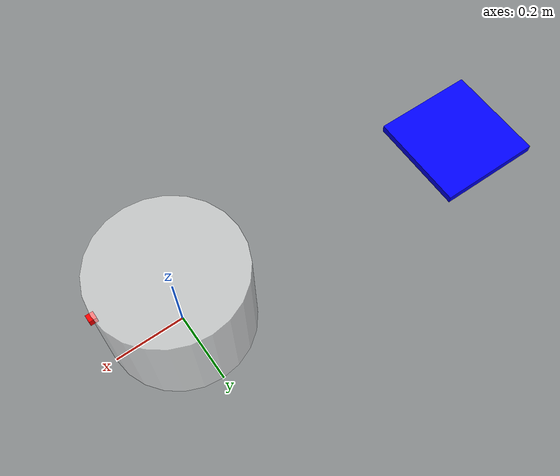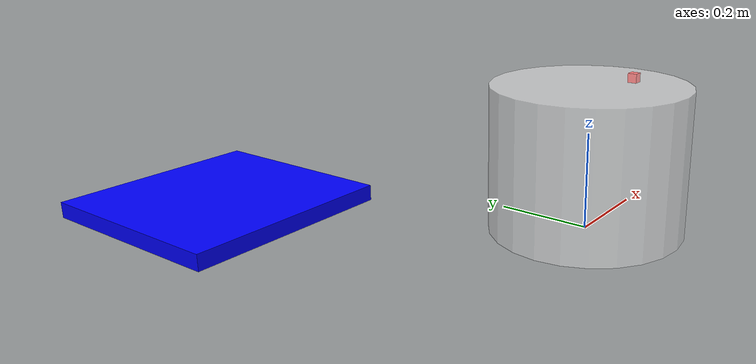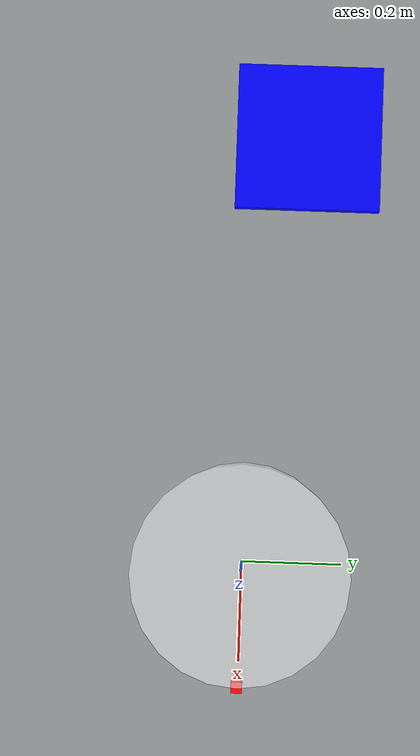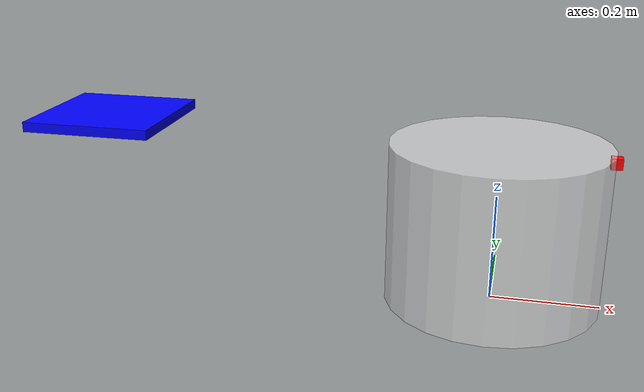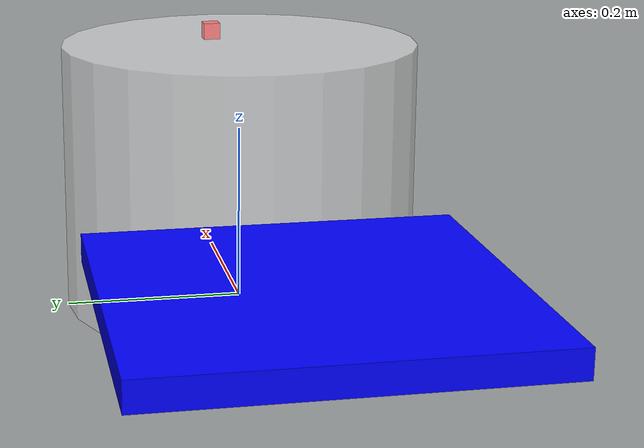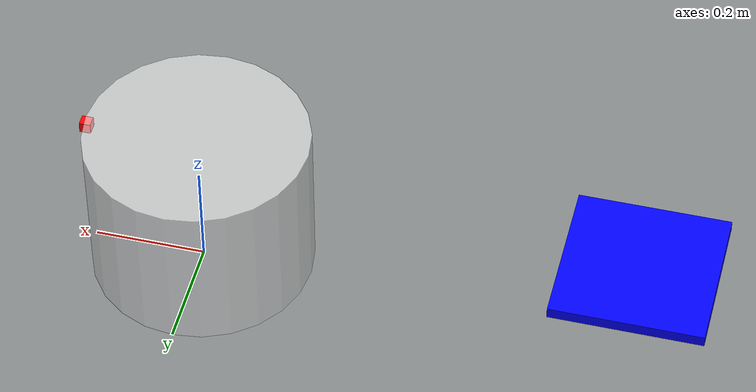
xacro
<?xml version="1.0"?>
<robot name="seek_robot" xmlns:xacro="http://www.ros.org/wiki/xacro">
  <xacro:include filename="$(find rm_seek)/urdf/base.urdf.xacro" />
  <xacro:include filename="$(find rm_seek)/urdf/camera.urdf.xacro"/>
  <xacro:include filename="$(find rm_seek)/urdf/seek_object.urdf.xacro"/>

  <xacro:base_link length="0.3" radius="0.2"/>
  <xacro:camera_link parent="base_link" xyz="0.2 0.0 0.13" rpy="1.5708 0.0 3.1416"/>
  <xacro:seek_object_link link_name="object" parent="camera_link" xyz="1.0 0.0 0.1" rpy="1.5708 0.0 3.1416"/>
</robot>

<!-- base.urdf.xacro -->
<robot xmlns:xacro="http://www.ros.org/wiki/xacro">
<!-- Base -->
  <xacro:macro name="base_link" params="length radius">
    <link name="base_footprint">
    </link>
    <link name="base_link">
      <visual>
        <origin xyz="0 0 0" rpy="0 0 0"/>
        <geometry>
          <cylinder length="${length}" radius="${radius}"/>
        </geometry>
        <material name="white">
          <color rgba="1.0 1.0 1.0 0.5"/>
        </material>
      </visual>
      <collision>
        <origin xyz="0 0 0" rpy="0 0 0"/>
        <geometry>
          <cylinder length="${length}" radius="${radius}"/>
        </geometry>
        <material name="white">
          <color rgba="1.0 1.0 1.0 0.5"/>
        </material>
      </collision>
    </link>
    <joint name="base_link_joint" type="fixed">
      <parent link="base_footprint"/>
      <child link="base_link"/>
      <origin xyz="0 0 ${length/2.0}" rpy="0 0 0"/>
    </joint>
  </xacro:macro>
</robot>

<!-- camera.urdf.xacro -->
<robot xmlns:xacro="http://www.ros.org/wiki/xacro">
<!-- Base -->
  <xacro:macro name="camera_link" params="parent xyz rpy">
    <link name="camera_link">
      <visual>
        <origin xyz="0 0 0" rpy="0 0 0"/>
        <geometry>
          <box size="0.02 0.02 0.02"/>
        </geometry>
        <material name="red">
          <color rgba="1.0 0.0 0.0 1"/>
        </material>
      </visual>
      <collision>
        <origin xyz="0 0 0" rpy="0 0 0"/>
        <geometry>
          <box size="0.02 0.02 0.02"/>
        </geometry>
        <material name="red">
          <color rgba="1.0 0.0 0.0 1"/>
        </material>
      </collision>
    </link>

    <joint name="camera_joint" type="fixed">
      <parent link="${parent}"/>
      <child link="camera_link"/>
      <origin xyz="${xyz}" rpy="${rpy}"/>
    </joint>
  </xacro:macro>
</robot>

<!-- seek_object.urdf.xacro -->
<robot xmlns:xacro="http://www.ros.org/wiki/xacro">
<!-- Base -->
  <xacro:macro name="seek_object_link" params="link_name parent xyz rpy">
    <link name="${link_name}_link">
      <visual>
        <origin xyz="0 0 0" rpy="0 0 0"/>
        <geometry>
          <box size="0.264 0.264 0.02"/>
        </geometry>
        <material name="biue">
          <color rgba="0.0 0.0 1.0 1"/>
        </material>
      </visual>
      <collision>
        <origin xyz="0 0 0" rpy="0 0 0"/>
        <geometry>
          <box size="0.264 0.264 0.02"/>
        </geometry>
        <material name="biue">
          <color rgba="0.0 0.0 1.0 1"/>
        </material>
      </collision>
    </link>

    <joint name="${link_name}_joint" type="floating">
      <parent link="${parent}"/>
      <child link="${link_name}_link"/>
      <origin xyz="${xyz}" rpy="${rpy}"/>
    </joint>
  </xacro:macro>
</robot>
